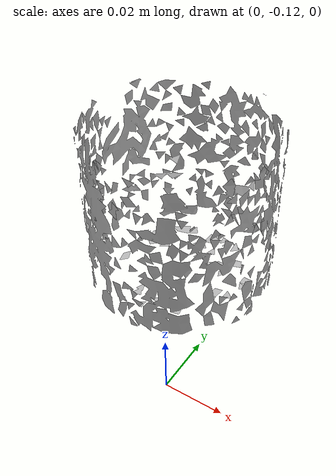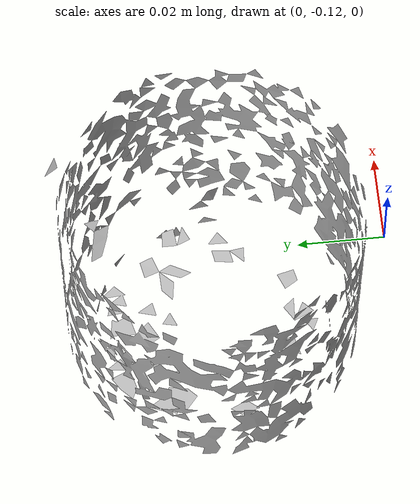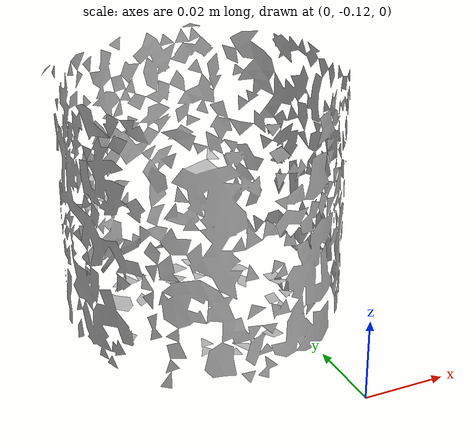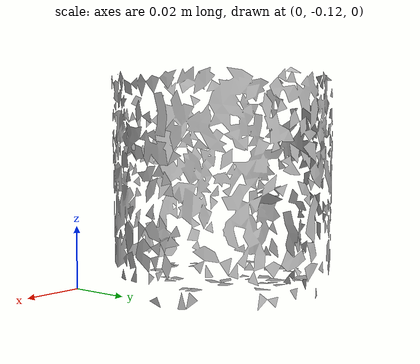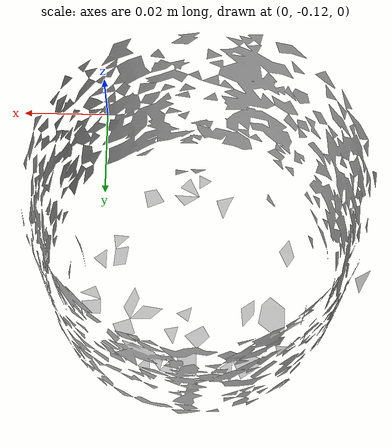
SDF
<?xml version="1.0" ?>
<sdf version="1.4">
  <model name='ycb_065-e_cups'>
    <link name='body'>
      <inertial>
        <mass>0.026</mass>
        <pose>-0.0191520189447 -0.0736796696986 0.0303956303635 0 0 0</pose>
        <inertia>
          <ixx>2.22049222627e-05</ixx>
          <ixy>2.80109596609e-07</ixy>
          <ixz>4.96885288874e-07</ixz>
          <iyy>2.2268222882e-05</iyy>
          <iyz>1.13426601048e-06</iyz>
          <izz>2.27554613842e-05</izz>
        </inertia>
      </inertial>
      <visual name='ycb_065-e_cups_visual'>
        <pose>0 0 0 0 0 0</pose>
        <geometry>
          <mesh>
            <uri>model://ycb_065-e_cups/meshes/textured.dae</uri>
          </mesh>
        </geometry>
      </visual>
      <collision name='ycb_065-e_cups_collision'>
        <pose>0 0 0 0 0 0</pose>
        <geometry>
          <mesh>
            <uri>model://ycb_065-e_cups/meshes/nontextured.stl</uri>
          </mesh>
        </geometry>
        <max_contacts>10</max_contacts>
      </collision>
    </link>
  </model>
</sdf>
